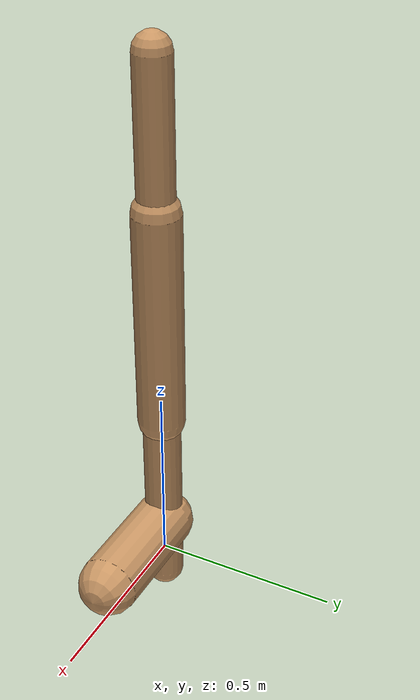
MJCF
<mujoco model="walker2d">
  <compiler angle="degree" coordinate="global" inertiafromgeom="true" />
  <default>
    <joint armature="0.01" damping=".1" limited="true" />
    <geom conaffinity="0" condim="3" contype="1" density="1000" friction="0.8 .1 .1" rgba="0.8 0.6 .4 1" />
  </default>
  <option integrator="RK4" timestep="0.002" />
  <worldbody>

    <body name="torso" pos="0 0 0.3224349728295239">
      <joint armature="0" axis="1 0 0" damping="0" limited="false" name="ignorex" pos="0 0 0" stiffness="0" type="slide" />
      <joint armature="0" axis="0 0 1" damping="0" limited="false" name="ignorez" pos="0 0 0" ref="1.25" stiffness="0" type="slide" />
      <joint armature="0" axis="0 1 0" damping="0" limited="false" name="ignorey" pos="0 0 0" stiffness="0" type="hinge" />
      <geom fromto="0 0 1.45 0 0 1.05" name="torso_geom" size="0.04932010295817852" type="capsule" />
      <body name="thigh">
        <joint axis="0 -1 0" name="thigh_joint" pos="0 0 1.05" range="-150 0" type="hinge" />
        <geom fromto="0.0 0.0 1.05 0.0 0.0 0.4472676444491729" name="thigh_geom" size="0.06470875876761197" type="capsule" />
        <body name="leg" pos="0.0 0.0 -0.1527323555508271">
          <joint axis="0 -1 0" name="leg_joint" pos="0 0 0.6" range="-150 0" type="hinge" />
          <geom fromto="0.0 0.0 0.6 0.0 0.0 -0.06970261727869675" name="leg_geom" size="0.051767007014089574" type="capsule" />
          <body name="foot" pos="0.0 0.0 -0.16970261727869676">
            <joint axis="0 -1 0" name="foot_joint" pos="0 0 0.1" range="-45 45" type="hinge" />
            <geom fromto="-0.0 0.0 0.10000000000000002 0.30108429674171777 0.0 0.10000000000000002" name="foot_geom" size="0.081432067411715" type="capsule" />
          </body>
        </body>
      </body>

      <body name="thigh_left">
        <joint axis="0 -1 0" name="thigh_left_joint" pos="0 0 1.05" range="-150 0" type="hinge" />
        <geom fromto="0.0 0.0 1.05 0.0 0.0 0.4472676444491729" name="thigh_left_geom" rgba=".7 .3 .6 1" size="0.06470875876761197" type="capsule" />
        <body name="leg_left" pos="0.0 0.0 -0.1527323555508271">
          <joint axis="0 -1 0" name="leg_left_joint" pos="0 0 0.6" range="-150 0" type="hinge" />
          <geom fromto="0.0 0.0 0.6 0.0 0.0 -0.06970261727869675" name="leg_left_geom" rgba=".7 .3 .6 1" size="0.051767007014089574" type="capsule" />
          <body name="foot_left" pos="0.0 0.0 -0.16970261727869676">
            <joint axis="0 -1 0" name="foot_left_joint" pos="0 0 0.1" range="-45 45" type="hinge" />
            <geom fromto="-0.0 0.0 0.10000000000000002 0.30108429674171777 0.0 0.10000000000000002" name="foot_left_geom" rgba=".7 .3 .6 1" size="0.081432067411715" type="capsule" />
          </body>
        </body>
      </body>
    </body>
  </worldbody>
  <actuator>

    <motor ctrllimited="true" ctrlrange="-1.0 1.0" gear="100" joint="thigh_joint" />
    <motor ctrllimited="true" ctrlrange="-1.0 1.0" gear="100" joint="leg_joint" />
    <motor ctrllimited="true" ctrlrange="-1.0 1.0" gear="100" joint="foot_joint" />
    <motor ctrllimited="true" ctrlrange="-1.0 1.0" gear="100" joint="thigh_left_joint" />
    <motor ctrllimited="true" ctrlrange="-1.0 1.0" gear="100" joint="leg_left_joint" />
    <motor ctrllimited="true" ctrlrange="-1.0 1.0" gear="100" joint="foot_left_joint" />

  </actuator>
</mujoco>
